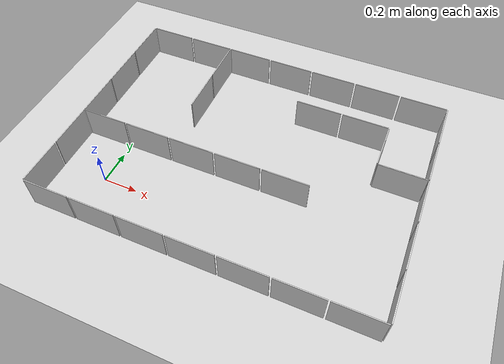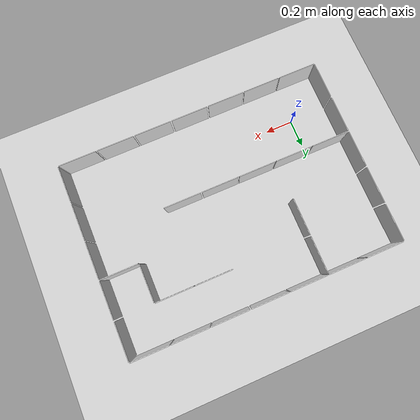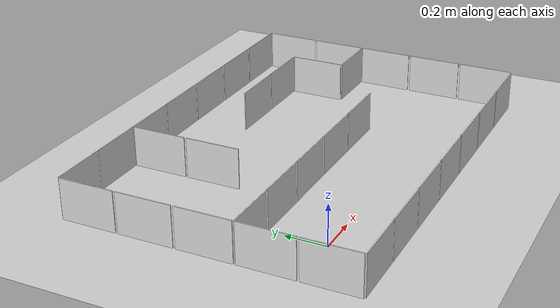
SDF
<?xml version="1.0"?>
<sdf version="1.6">
  <world name="default">

    <include>
      <uri>model://ground_plane</uri>
    </include>

    <include>
      <uri>model://sun</uri>
    </include>

    <scene>
      <shadows>false</shadows>
    </scene>

    <gui fullscreen='0'>
      <camera name='user_camera'>
        <pose frame=''>0.319654 -0.235002 9.29441 0 1.5138 0.009599</pose>
        <view_controller>orbit</view_controller>
        <projection_type>perspective</projection_type>
      </camera>
    </gui>

    <physics type="ode">
      <real_time_update_rate>1000.0</real_time_update_rate>
      <max_step_size>0.001</max_step_size>
      <real_time_factor>1</real_time_factor>
      <ode>
        <solver>
          <type>quick</type>
          <iters>150</iters>
          <precon_iters>0</precon_iters>
          <sor>1.400000</sor>
          <use_dynamic_moi_rescaling>1</use_dynamic_moi_rescaling>
        </solver>
        <constraints>
          <cfm>0.00001</cfm>
          <erp>0.2</erp>
          <contact_max_correcting_vel>2000.000000</contact_max_correcting_vel>
          <contact_surface_layer>0.01000</contact_surface_layer>
        </constraints>
      </ode>
    </physics>

    <model name="ee4308_world_24">
      <static>1</static>
      <include>
        <uri>model://ee4308_world_24</uri>
      </include>
    </model>

  </world>
</sdf>

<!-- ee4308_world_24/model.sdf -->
<sdf version='1.5'>
  <model name='ee4308_world_24'>
    <static>1</static>
    <link name='world_24'>

      <collision name='wx_0'>
        <pose>-0.140000 -0.280000 0.1 0 0 1.570000</pose>
        <geometry>
          <box>
            <size>0.005 0.27 0.2</size>
          </box>
        </geometry>
        <max_contacts>10</max_contacts>
      </collision>
      <visual name='wx_0'>
        <pose>-0.140000 -0.280000 0.1 0 0 1.570000</pose>
        <geometry>
          <box>
            <size>0.005 0.27 0.2</size>
          </box>
        </geometry>
        <material>
          <script>
            <uri>file://media/materials/scripts/gazebo.material</uri>
            <name>Gazebo/White</name>
          </script>
        </material>
      </visual>

      <collision name='wx_1'>
        <pose>0.140000 -0.280000 0.1 0 0 1.570000</pose>
        <geometry>
          <box>
            <size>0.005 0.27 0.2</size>
          </box>
        </geometry>
        <max_contacts>10</max_contacts>
      </collision>
      <visual name='wx_1'>
        <pose>0.140000 -0.280000 0.1 0 0 1.570000</pose>
        <geometry>
          <box>
            <size>0.005 0.27 0.2</size>
          </box>
        </geometry>
        <material>
          <script>
            <uri>file://media/materials/scripts/gazebo.material</uri>
            <name>Gazebo/White</name>
          </script>
        </material>
      </visual>

      <collision name='wx_2'>
        <pose>0.420000 -0.280000 0.1 0 0 1.570000</pose>
        <geometry>
          <box>
            <size>0.005 0.27 0.2</size>
          </box>
        </geometry>
        <max_contacts>10</max_contacts>
      </collision>
      <visual name='wx_2'>
        <pose>0.420000 -0.280000 0.1 0 0 1.570000</pose>
        <geometry>
          <box>
            <size>0.005 0.27 0.2</size>
          </box>
        </geometry>
        <material>
          <script>
            <uri>file://media/materials/scripts/gazebo.material</uri>
            <name>Gazebo/White</name>
          </script>
        </material>
      </visual>

      <collision name='wx_3'>
        <pose>0.700000 -0.280000 0.1 0 0 1.570000</pose>
        <geometry>
          <box>
            <size>0.005 0.27 0.2</size>
          </box>
        </geometry>
        <max_contacts>10</max_contacts>
      </collision>
      <visual name='wx_3'>
        <pose>0.700000 -0.280000 0.1 0 0 1.570000</pose>
        <geometry>
          <box>
            <size>0.005 0.27 0.2</size>
          </box>
        </geometry>
        <material>
          <script>
            <uri>file://media/materials/scripts/gazebo.material</uri>
            <name>Gazebo/White</name>
          </script>
        </material>
      </visual>

      <collision name='wx_4'>
        <pose>0.980000 -0.280000 0.1 0 0 1.570000</pose>
        <geometry>
          <box>
            <size>0.005 0.27 0.2</size>
          </box>
        </geometry>
        <max_contacts>10</max_contacts>
      </collision>
      <visual name='wx_4'>
        <pose>0.980000 -0.280000 0.1 0 0 1.570000</pose>
        <geometry>
          <box>
            <size>0.005 0.27 0.2</size>
          </box>
        </geometry>
        <material>
          <script>
            <uri>file://media/materials/scripts/gazebo.material</uri>
            <name>Gazebo/White</name>
          </script>
        </material>
      </visual>

      <collision name='wx_5'>
        <pose>1.260000 -0.280000 0.1 0 0 1.570000</pose>
        <geometry>
          <box>
            <size>0.005 0.27 0.2</size>
          </box>
        </geometry>
        <max_contacts>10</max_contacts>
      </collision>
      <visual name='wx_5'>
        <pose>1.260000 -0.280000 0.1 0 0 1.570000</pose>
        <geometry>
          <box>
            <size>0.005 0.27 0.2</size>
          </box>
        </geometry>
        <material>
          <script>
            <uri>file://media/materials/scripts/gazebo.material</uri>
            <name>Gazebo/White</name>
          </script>
        </material>
      </visual>

      <collision name='wx_6'>
        <pose>1.540000 -0.280000 0.1 0 0 1.570000</pose>
        <geometry>
          <box>
            <size>0.005 0.27 0.2</size>
          </box>
        </geometry>
        <max_contacts>10</max_contacts>
      </collision>
      <visual name='wx_6'>
        <pose>1.540000 -0.280000 0.1 0 0 1.570000</pose>
        <geometry>
          <box>
            <size>0.005 0.27 0.2</size>
          </box>
        </geometry>
        <material>
          <script>
            <uri>file://media/materials/scripts/gazebo.material</uri>
            <name>Gazebo/White</name>
          </script>
        </material>
      </visual>

      <collision name='wx_7'>
        <pose>-0.140000 1.120000 0.1 0 0 1.570000</pose>
        <geometry>
          <box>
            <size>0.005 0.27 0.2</size>
          </box>
        </geometry>
        <max_contacts>10</max_contacts>
      </collision>
      <visual name='wx_7'>
        <pose>-0.140000 1.120000 0.1 0 0 1.570000</pose>
        <geometry>
          <box>
            <size>0.005 0.27 0.2</size>
          </box>
        </geometry>
        <material>
          <script>
            <uri>file://media/materials/scripts/gazebo.material</uri>
            <name>Gazebo/White</name>
          </script>
        </material>
      </visual>

      <collision name='wx_8'>
        <pose>0.140000 1.120000 0.1 0 0 1.570000</pose>
        <geometry>
          <box>
            <size>0.005 0.27 0.2</size>
          </box>
        </geometry>
        <max_contacts>10</max_contacts>
      </collision>
      <visual name='wx_8'>
        <pose>0.140000 1.120000 0.1 0 0 1.570000</pose>
        <geometry>
          <box>
            <size>0.005 0.27 0.2</size>
          </box>
        </geometry>
        <material>
          <script>
            <uri>file://media/materials/scripts/gazebo.material</uri>
            <name>Gazebo/White</name>
          </script>
        </material>
      </visual>

      <collision name='wx_9'>
        <pose>0.420000 1.120000 0.1 0 0 1.570000</pose>
        <geometry>
          <box>
            <size>0.005 0.27 0.2</size>
          </box>
        </geometry>
        <max_contacts>10</max_contacts>
      </collision>
      <visual name='wx_9'>
        <pose>0.420000 1.120000 0.1 0 0 1.570000</pose>
        <geometry>
          <box>
            <size>0.005 0.27 0.2</size>
          </box>
        </geometry>
        <material>
          <script>
            <uri>file://media/materials/scripts/gazebo.material</uri>
            <name>Gazebo/White</name>
          </script>
        </material>
      </visual>

      <collision name='wx_10'>
        <pose>0.700000 1.120000 0.1 0 0 1.570000</pose>
        <geometry>
          <box>
            <size>0.005 0.27 0.2</size>
          </box>
        </geometry>
        <max_contacts>10</max_contacts>
      </collision>
      <visual name='wx_10'>
        <pose>0.700000 1.120000 0.1 0 0 1.570000</pose>
        <geometry>
          <box>
            <size>0.005 0.27 0.2</size>
          </box>
        </geometry>
        <material>
          <script>
            <uri>file://media/materials/scripts/gazebo.material</uri>
            <name>Gazebo/White</name>
          </script>
        </material>
      </visual>

      <collision name='wx_11'>
        <pose>0.980000 1.120000 0.1 0 0 1.570000</pose>
        <geometry>
          <box>
            <size>0.005 0.27 0.2</size>
          </box>
        </geometry>
        <max_contacts>10</max_contacts>
      </collision>
      <visual name='wx_11'>
        <pose>0.980000 1.120000 0.1 0 0 1.570000</pose>
        <geometry>
          <box>
            <size>0.005 0.27 0.2</size>
          </box>
        </geometry>
        <material>
          <script>
            <uri>file://media/materials/scripts/gazebo.material</uri>
            <name>Gazebo/White</name>
          </script>
        </material>
      </visual>

      <collision name='wx_12'>
        <pose>1.260000 1.120000 0.1 0 0 1.570000</pose>
        <geometry>
          <box>
            <size>0.005 0.27 0.2</size>
          </box>
        </geometry>
        <max_contacts>10</max_contacts>
      </collision>
      <visual name='wx_12'>
        <pose>1.260000 1.120000 0.1 0 0 1.570000</pose>
        <geometry>
          <box>
            <size>0.005 0.27 0.2</size>
          </box>
        </geometry>
        <material>
          <script>
            <uri>file://media/materials/scripts/gazebo.material</uri>
            <name>Gazebo/White</name>
          </script>
        </material>
      </visual>

      <collision name='wx_13'>
        <pose>1.540000 1.120000 0.1 0 0 1.570000</pose>
        <geometry>
          <box>
            <size>0.005 0.27 0.2</size>
          </box>
        </geometry>
        <max_contacts>10</max_contacts>
      </collision>
      <visual name='wx_13'>
        <pose>1.540000 1.120000 0.1 0 0 1.570000</pose>
        <geometry>
          <box>
            <size>0.005 0.27 0.2</size>
          </box>
        </geometry>
        <material>
          <script>
            <uri>file://media/materials/scripts/gazebo.material</uri>
            <name>Gazebo/White</name>
          </script>
        </material>
      </visual>

      <collision name='wx_14'>
        <pose>-0.140000 0.280000 0.1 0 0 1.570000</pose>
        <geometry>
          <box>
            <size>0.005 0.27 0.2</size>
          </box>
        </geometry>
        <max_contacts>10</max_contacts>
      </collision>
      <visual name='wx_14'>
        <pose>-0.140000 0.280000 0.1 0 0 1.570000</pose>
        <geometry>
          <box>
            <size>0.005 0.27 0.2</size>
          </box>
        </geometry>
        <material>
          <script>
            <uri>file://media/materials/scripts/gazebo.material</uri>
            <name>Gazebo/White</name>
          </script>
        </material>
      </visual>

      <collision name='wx_15'>
        <pose>0.140000 0.280000 0.1 0 0 1.570000</pose>
        <geometry>
          <box>
            <size>0.005 0.27 0.2</size>
          </box>
        </geometry>
        <max_contacts>10</max_contacts>
      </collision>
      <visual name='wx_15'>
        <pose>0.140000 0.280000 0.1 0 0 1.570000</pose>
        <geometry>
          <box>
            <size>0.005 0.27 0.2</size>
          </box>
        </geometry>
        <material>
          <script>
            <uri>file://media/materials/scripts/gazebo.material</uri>
            <name>Gazebo/White</name>
          </script>
        </material>
      </visual>

      <collision name='wx_16'>
        <pose>0.420000 0.280000 0.1 0 0 1.570000</pose>
        <geometry>
          <box>
            <size>0.005 0.27 0.2</size>
          </box>
        </geometry>
        <max_contacts>10</max_contacts>
      </collision>
      <visual name='wx_16'>
        <pose>0.420000 0.280000 0.1 0 0 1.570000</pose>
        <geometry>
          <box>
            <size>0.005 0.27 0.2</size>
          </box>
        </geometry>
        <material>
          <script>
            <uri>file://media/materials/scripts/gazebo.material</uri>
            <name>Gazebo/White</name>
          </script>
        </material>
      </visual>

      <collision name='wx_17'>
        <pose>0.700000 0.280000 0.1 0 0 1.570000</pose>
        <geometry>
          <box>
            <size>0.005 0.27 0.2</size>
          </box>
        </geometry>
        <max_contacts>10</max_contacts>
      </collision>
      <visual name='wx_17'>
        <pose>0.700000 0.280000 0.1 0 0 1.570000</pose>
        <geometry>
          <box>
            <size>0.005 0.27 0.2</size>
          </box>
        </geometry>
        <material>
          <script>
            <uri>file://media/materials/scripts/gazebo.material</uri>
            <name>Gazebo/White</name>
          </script>
        </material>
      </visual>

      <collision name='wx_18'>
        <pose>0.980000 0.280000 0.1 0 0 1.570000</pose>
        <geometry>
          <box>
            <size>0.005 0.27 0.2</size>
          </box>
        </geometry>
        <max_contacts>10</max_contacts>
      </collision>
      <visual name='wx_18'>
        <pose>0.980000 0.280000 0.1 0 0 1.570000</pose>
        <geometry>
          <box>
            <size>0.005 0.27 0.2</size>
          </box>
        </geometry>
        <material>
          <script>
            <uri>file://media/materials/scripts/gazebo.material</uri>
            <name>Gazebo/White</name>
          </script>
        </material>
      </visual>

      <collision name='wx_19'>
        <pose>0.980000 0.840000 0.1 0 0 1.570000</pose>
        <geometry>
          <box>
            <size>0.005 0.27 0.2</size>
          </box>
        </geometry>
        <max_contacts>10</max_contacts>
      </collision>
      <visual name='wx_19'>
        <pose>0.980000 0.840000 0.1 0 0 1.570000</pose>
        <geometry>
          <box>
            <size>0.005 0.27 0.2</size>
          </box>
        </geometry>
        <material>
          <script>
            <uri>file://media/materials/scripts/gazebo.material</uri>
            <name>Gazebo/White</name>
          </script>
        </material>
      </visual>

      <collision name='wx_20'>
        <pose>1.260000 0.840000 0.1 0 0 1.570000</pose>
        <geometry>
          <box>
            <size>0.005 0.27 0.2</size>
          </box>
        </geometry>
        <max_contacts>10</max_contacts>
      </collision>
      <visual name='wx_20'>
        <pose>1.260000 0.840000 0.1 0 0 1.570000</pose>
        <geometry>
          <box>
            <size>0.005 0.27 0.2</size>
          </box>
        </geometry>
        <material>
          <script>
            <uri>file://media/materials/scripts/gazebo.material</uri>
            <name>Gazebo/White</name>
          </script>
        </material>
      </visual>

      <collision name='wx_21'>
        <pose>1.540000 0.560000 0.1 0 0 1.570000</pose>
        <geometry>
          <box>
            <size>0.005 0.27 0.2</size>
          </box>
        </geometry>
        <max_contacts>10</max_contacts>
      </collision>
      <visual name='wx_21'>
        <pose>1.540000 0.560000 0.1 0 0 1.570000</pose>
        <geometry>
          <box>
            <size>0.005 0.27 0.2</size>
          </box>
        </geometry>
        <material>
          <script>
            <uri>file://media/materials/scripts/gazebo.material</uri>
            <name>Gazebo/White</name>
          </script>
        </material>
      </visual>

      <collision name='wy_0'>
        <pose>-0.280000 -0.140000 0.1 0 0 0.000000</pose>
        <geometry>
          <box>
            <size>0.005 0.27 0.2</size>
          </box>
        </geometry>
        <max_contacts>10</max_contacts>
      </collision>
      <visual name='wy_0'>
        <pose>-0.280000 -0.140000 0.1 0 0 0.000000</pose>
        <geometry>
          <box>
            <size>0.005 0.27 0.2</size>
          </box>
        </geometry>
        <material>
          <script>
            <uri>file://media/materials/scripts/gazebo.material</uri>
            <name>Gazebo/White</name>
          </script>
        </material>
      </visual>

      <collision name='wy_1'>
        <pose>-0.280000 0.140000 0.1 0 0 0.000000</pose>
        <geometry>
          <box>
            <size>0.005 0.27 0.2</size>
          </box>
        </geometry>
        <max_contacts>10</max_contacts>
      </collision>
      <visual name='wy_1'>
        <pose>-0.280000 0.140000 0.1 0 0 0.000000</pose>
        <geometry>
          <box>
            <size>0.005 0.27 0.2</size>
          </box>
        </geometry>
        <material>
          <script>
            <uri>file://media/materials/scripts/gazebo.material</uri>
            <name>Gazebo/White</name>
          </script>
        </material>
      </visual>

      <collision name='wy_2'>
        <pose>-0.280000 0.420000 0.1 0 0 0.000000</pose>
        <geometry>
          <box>
            <size>0.005 0.27 0.2</size>
          </box>
        </geometry>
        <max_contacts>10</max_contacts>
      </collision>
      <visual name='wy_2'>
        <pose>-0.280000 0.420000 0.1 0 0 0.000000</pose>
        <geometry>
          <box>
            <size>0.005 0.27 0.2</size>
          </box>
        </geometry>
        <material>
          <script>
            <uri>file://media/materials/scripts/gazebo.material</uri>
            <name>Gazebo/White</name>
          </script>
        </material>
      </visual>

      <collision name='wy_3'>
        <pose>-0.280000 0.700000 0.1 0 0 0.000000</pose>
        <geometry>
          <box>
            <size>0.005 0.27 0.2</size>
          </box>
        </geometry>
        <max_contacts>10</max_contacts>
      </collision>
      <visual name='wy_3'>
        <pose>-0.280000 0.700000 0.1 0 0 0.000000</pose>
        <geometry>
          <box>
            <size>0.005 0.27 0.2</size>
          </box>
        </geometry>
        <material>
          <script>
            <uri>file://media/materials/scripts/gazebo.material</uri>
            <name>Gazebo/White</name>
          </script>
        </material>
      </visual>

      <collision name='wy_4'>
        <pose>-0.280000 0.980000 0.1 0 0 0.000000</pose>
        <geometry>
          <box>
            <size>0.005 0.27 0.2</size>
          </box>
        </geometry>
        <max_contacts>10</max_contacts>
      </collision>
      <visual name='wy_4'>
        <pose>-0.280000 0.980000 0.1 0 0 0.000000</pose>
        <geometry>
          <box>
            <size>0.005 0.27 0.2</size>
          </box>
        </geometry>
        <material>
          <script>
            <uri>file://media/materials/scripts/gazebo.material</uri>
            <name>Gazebo/White</name>
          </script>
        </material>
      </visual>

      <collision name='wy_5'>
        <pose>1.680000 -0.140000 0.1 0 0 0.000000</pose>
        <geometry>
          <box>
            <size>0.005 0.27 0.2</size>
          </box>
        </geometry>
        <max_contacts>10</max_contacts>
      </collision>
      <visual name='wy_5'>
        <pose>1.680000 -0.140000 0.1 0 0 0.000000</pose>
        <geometry>
          <box>
            <size>0.005 0.27 0.2</size>
          </box>
        </geometry>
        <material>
          <script>
            <uri>file://media/materials/scripts/gazebo.material</uri>
            <name>Gazebo/White</name>
          </script>
        </material>
      </visual>

      <collision name='wy_6'>
        <pose>1.680000 0.140000 0.1 0 0 0.000000</pose>
        <geometry>
          <box>
            <size>0.005 0.27 0.2</size>
          </box>
        </geometry>
        <max_contacts>10</max_contacts>
      </collision>
      <visual name='wy_6'>
        <pose>1.680000 0.140000 0.1 0 0 0.000000</pose>
        <geometry>
          <box>
            <size>0.005 0.27 0.2</size>
          </box>
        </geometry>
        <material>
          <script>
            <uri>file://media/materials/scripts/gazebo.material</uri>
            <name>Gazebo/White</name>
          </script>
        </material>
      </visual>

      <collision name='wy_7'>
        <pose>1.680000 0.420000 0.1 0 0 0.000000</pose>
        <geometry>
          <box>
            <size>0.005 0.27 0.2</size>
          </box>
        </geometry>
        <max_contacts>10</max_contacts>
      </collision>
      <visual name='wy_7'>
        <pose>1.680000 0.420000 0.1 0 0 0.000000</pose>
        <geometry>
          <box>
            <size>0.005 0.27 0.2</size>
          </box>
        </geometry>
        <material>
          <script>
            <uri>file://media/materials/scripts/gazebo.material</uri>
            <name>Gazebo/White</name>
          </script>
        </material>
      </visual>

      <collision name='wy_8'>
        <pose>1.680000 0.700000 0.1 0 0 0.000000</pose>
        <geometry>
          <box>
            <size>0.005 0.27 0.2</size>
          </box>
        </geometry>
        <max_contacts>10</max_contacts>
      </collision>
      <visual name='wy_8'>
        <pose>1.680000 0.700000 0.1 0 0 0.000000</pose>
        <geometry>
          <box>
            <size>0.005 0.27 0.2</size>
          </box>
        </geometry>
        <material>
          <script>
            <uri>file://media/materials/scripts/gazebo.material</uri>
            <name>Gazebo/White</name>
          </script>
        </material>
      </visual>

      <collision name='wy_9'>
        <pose>1.680000 0.980000 0.1 0 0 0.000000</pose>
        <geometry>
          <box>
            <size>0.005 0.27 0.2</size>
          </box>
        </geometry>
        <max_contacts>10</max_contacts>
      </collision>
      <visual name='wy_9'>
        <pose>1.680000 0.980000 0.1 0 0 0.000000</pose>
        <geometry>
          <box>
            <size>0.005 0.27 0.2</size>
          </box>
        </geometry>
        <material>
          <script>
            <uri>file://media/materials/scripts/gazebo.material</uri>
            <name>Gazebo/White</name>
          </script>
        </material>
      </visual>

      <collision name='wy_10'>
        <pose>0.280000 0.700000 0.1 0 0 0.000000</pose>
        <geometry>
          <box>
            <size>0.005 0.27 0.2</size>
          </box>
        </geometry>
        <max_contacts>10</max_contacts>
      </collision>
      <visual name='wy_10'>
        <pose>0.280000 0.700000 0.1 0 0 0.000000</pose>
        <geometry>
          <box>
            <size>0.005 0.27 0.2</size>
          </box>
        </geometry>
        <material>
          <script>
            <uri>file://media/materials/scripts/gazebo.material</uri>
            <name>Gazebo/White</name>
          </script>
        </material>
      </visual>

      <collision name='wy_11'>
        <pose>0.280000 0.980000 0.1 0 0 0.000000</pose>
        <geometry>
          <box>
            <size>0.005 0.27 0.2</size>
          </box>
        </geometry>
        <max_contacts>10</max_contacts>
      </collision>
      <visual name='wy_11'>
        <pose>0.280000 0.980000 0.1 0 0 0.000000</pose>
        <geometry>
          <box>
            <size>0.005 0.27 0.2</size>
          </box>
        </geometry>
        <material>
          <script>
            <uri>file://media/materials/scripts/gazebo.material</uri>
            <name>Gazebo/White</name>
          </script>
        </material>
      </visual>

      <collision name='wy_12'>
        <pose>1.400000 0.700000 0.1 0 0 0.000000</pose>
        <geometry>
          <box>
            <size>0.005 0.27 0.2</size>
          </box>
        </geometry>
        <max_contacts>10</max_contacts>
      </collision>
      <visual name='wy_12'>
        <pose>1.400000 0.700000 0.1 0 0 0.000000</pose>
        <geometry>
          <box>
            <size>0.005 0.27 0.2</size>
          </box>
        </geometry>
        <material>
          <script>
            <uri>file://media/materials/scripts/gazebo.material</uri>
            <name>Gazebo/White</name>
          </script>
        </material>
      </visual>
    </link>
  </model>
</sdf>
